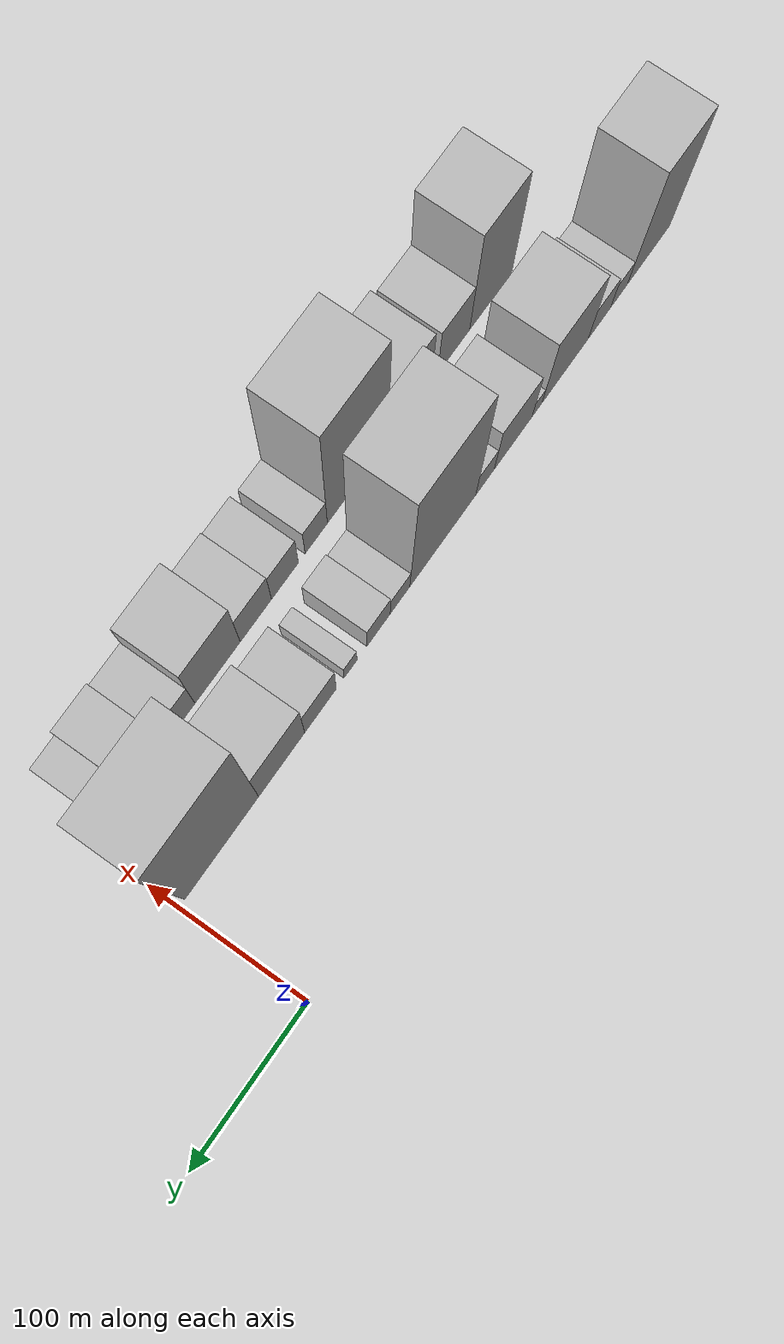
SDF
<sdf version="1.6">
 <world name="default">
  <model name="building_1">
   <static>1</static>
   <pose>100.0000 -429.0224 0 0.000000 0.000000 0.000000</pose>
   <link name="link">
    <pose>0 0 64.50 0 0 0</pose>
    <collision name="collision"><geometry><box><size>40.0000 41.9551 129.0000</size></box></geometry></collision>
    <visual name="visual">
     <cast_shadows>0</cast_shadows>
     <geometry><box><size>40.0000 41.9551 129.0000</size></box></geometry>
     <material>
      <script>
       <uri>model://HANNAS_wall/materials/scripts</uri>
       <uri>model://HANNAS_wall/materials/textures</uri>
       <name>vrc/HANNAS_wall</name>
      </script>
     </material>
    </visual>
   </link>
  </model>
  <model name="building_2">
   <static>1</static>
   <pose>100.0000 -399.9139 0 0.000000 0.000000 0.000000</pose>
   <link name="link">
    <pose>0 0 15.00 0 0 0</pose>
    <collision name="collision"><geometry><box><size>40.0000 16.2620 30.0000</size></box></geometry></collision>
    <visual name="visual">
     <cast_shadows>0</cast_shadows>
     <geometry><box><size>40.0000 16.2620 30.0000</size></box></geometry>
     <material>
      <script>
       <uri>model://HANNAS_wall/materials/scripts</uri>
       <uri>model://HANNAS_wall/materials/textures</uri>
       <name>vrc/HANNAS_wall</name>
      </script>
     </material>
    </visual>
   </link>
  </model>
  <model name="building_3">
   <static>1</static>
   <pose>100.0000 -380.9201 0 0.000000 0.000000 0.000000</pose>
   <link name="link">
    <pose>0 0 19.50 0 0 0</pose>
    <collision name="collision"><geometry><box><size>40.0000 21.7257 39.0000</size></box></geometry></collision>
    <visual name="visual">
     <cast_shadows>0</cast_shadows>
     <geometry><box><size>40.0000 21.7257 39.0000</size></box></geometry>
     <material>
      <script>
       <uri>model://HANNAS_wall/materials/scripts</uri>
       <uri>model://HANNAS_wall/materials/textures</uri>
       <name>vrc/HANNAS_wall</name>
      </script>
     </material>
    </visual>
   </link>
  </model>
  <model name="building_4">
   <static>1</static>
   <pose>100.0000 -347.9478 0 0.000000 0.000000 0.000000</pose>
   <link name="link">
    <pose>0 0 42.00 0 0 0</pose>
    <collision name="collision"><geometry><box><size>40.0000 44.2188 84.0000</size></box></geometry></collision>
    <visual name="visual">
     <cast_shadows>0</cast_shadows>
     <geometry><box><size>40.0000 44.2188 84.0000</size></box></geometry>
     <material>
      <script>
       <uri>model://HANNAS_wall/materials/scripts</uri>
       <uri>model://HANNAS_wall/materials/textures</uri>
       <name>vrc/HANNAS_wall</name>
      </script>
     </material>
    </visual>
   </link>
  </model>
  <model name="building_5">
   <static>1</static>
   <pose>100.0000 -321.0881 0 0.000000 0.000000 0.000000</pose>
   <link name="link">
    <pose>0 0 10.50 0 0 0</pose>
    <collision name="collision"><geometry><box><size>40.0000 9.5005 21.0000</size></box></geometry></collision>
    <visual name="visual">
     <cast_shadows>0</cast_shadows>
     <geometry><box><size>40.0000 9.5005 21.0000</size></box></geometry>
     <material>
      <script>
       <uri>model://HANNAS_wall/materials/scripts</uri>
       <uri>model://HANNAS_wall/materials/textures</uri>
       <name>vrc/HANNAS_wall</name>
      </script>
     </material>
    </visual>
   </link>
  </model>
  <model name="building_6">
   <static>1</static>
   <pose>100.0000 -298.5187 0 0.000000 0.000000 0.000000</pose>
   <link name="link">
    <pose>0 0 30.00 0 0 0</pose>
    <collision name="collision"><geometry><box><size>40.0000 35.6383 60.0000</size></box></geometry></collision>
    <visual name="visual">
     <cast_shadows>0</cast_shadows>
     <geometry><box><size>40.0000 35.6383 60.0000</size></box></geometry>
     <material>
      <script>
       <uri>model://HANNAS_wall/materials/scripts</uri>
       <uri>model://HANNAS_wall/materials/textures</uri>
       <name>vrc/HANNAS_wall</name>
      </script>
     </material>
    </visual>
   </link>
  </model>
  <model name="building_7">
   <static>1</static>
   <pose>100.0000 -272.0576 0 0.000000 0.000000 0.000000</pose>
   <link name="link">
    <pose>0 0 16.50 0 0 0</pose>
    <collision name="collision"><geometry><box><size>40.0000 17.2840 33.0000</size></box></geometry></collision>
    <visual name="visual">
     <cast_shadows>0</cast_shadows>
     <geometry><box><size>40.0000 17.2840 33.0000</size></box></geometry>
     <material>
      <script>
       <uri>model://HANNAS_wall/materials/scripts</uri>
       <uri>model://HANNAS_wall/materials/textures</uri>
       <name>vrc/HANNAS_wall</name>
      </script>
     </material>
    </visual>
   </link>
  </model>
  <model name="building_8">
   <static>1</static>
   <pose>100.0000 -233.0441 0 0.000000 0.000000 0.000000</pose>
   <link name="link">
    <pose>0 0 78.00 0 0 0</pose>
    <collision name="collision"><geometry><box><size>40.0000 60.7430 156.0000</size></box></geometry></collision>
    <visual name="visual">
     <cast_shadows>0</cast_shadows>
     <geometry><box><size>40.0000 60.7430 156.0000</size></box></geometry>
     <material>
      <script>
       <uri>model://HANNAS_wall/materials/scripts</uri>
       <uri>model://HANNAS_wall/materials/textures</uri>
       <name>vrc/HANNAS_wall</name>
      </script>
     </material>
    </visual>
   </link>
  </model>
  <model name="building_9">
   <static>1</static>
   <pose>100.0000 -193.7756 0 0.000000 0.000000 0.000000</pose>
   <link name="link">
    <pose>0 0 15.00 0 0 0</pose>
    <collision name="collision"><geometry><box><size>40.0000 17.7942 30.0000</size></box></geometry></collision>
    <visual name="visual">
     <cast_shadows>0</cast_shadows>
     <geometry><box><size>40.0000 17.7942 30.0000</size></box></geometry>
     <material>
      <script>
       <uri>model://HANNAS_wall/materials/scripts</uri>
       <uri>model://HANNAS_wall/materials/textures</uri>
       <name>vrc/HANNAS_wall</name>
      </script>
     </material>
    </visual>
   </link>
  </model>
  <model name="building_10">
   <static>1</static>
   <pose>100.0000 -174.4741 0 0.000000 0.000000 0.000000</pose>
   <link name="link">
    <pose>0 0 18.00 0 0 0</pose>
    <collision name="collision"><geometry><box><size>40.0000 20.8089 36.0000</size></box></geometry></collision>
    <visual name="visual">
     <cast_shadows>0</cast_shadows>
     <geometry><box><size>40.0000 20.8089 36.0000</size></box></geometry>
     <material>
      <script>
       <uri>model://HANNAS_wall/materials/scripts</uri>
       <uri>model://HANNAS_wall/materials/textures</uri>
       <name>vrc/HANNAS_wall</name>
      </script>
     </material>
    </visual>
   </link>
  </model>
  <model name="building_11">
   <static>1</static>
   <pose>100.0000 -149.3201 0 0.000000 0.000000 0.000000</pose>
   <link name="link">
    <pose>0 0 12.00 0 0 0</pose>
    <collision name="collision"><geometry><box><size>40.0000 11.4991 24.0000</size></box></geometry></collision>
    <visual name="visual">
     <cast_shadows>0</cast_shadows>
     <geometry><box><size>40.0000 11.4991 24.0000</size></box></geometry>
     <material>
      <script>
       <uri>model://HANNAS_wall/materials/scripts</uri>
       <uri>model://HANNAS_wall/materials/textures</uri>
       <name>vrc/HANNAS_wall</name>
      </script>
     </material>
    </visual>
   </link>
  </model>
  <model name="building_12">
   <static>1</static>
   <pose>100.0000 -122.6323 0 0.000000 0.000000 0.000000</pose>
   <link name="link">
    <pose>0 0 24.00 0 0 0</pose>
    <collision name="collision"><geometry><box><size>40.0000 27.8765 48.0000</size></box></geometry></collision>
    <visual name="visual">
     <cast_shadows>0</cast_shadows>
     <geometry><box><size>40.0000 27.8765 48.0000</size></box></geometry>
     <material>
      <script>
       <uri>model://HANNAS_wall/materials/scripts</uri>
       <uri>model://HANNAS_wall/materials/textures</uri>
       <name>vrc/HANNAS_wall</name>
      </script>
     </material>
    </visual>
   </link>
  </model>
  <model name="building_13">
   <static>1</static>
   <pose>100.0000 -88.6389 0 0.000000 0.000000 0.000000</pose>
   <link name="link">
    <pose>0 0 34.50 0 0 0</pose>
    <collision name="collision"><geometry><box><size>40.0000 40.1102 69.0000</size></box></geometry></collision>
    <visual name="visual">
     <cast_shadows>0</cast_shadows>
     <geometry><box><size>40.0000 40.1102 69.0000</size></box></geometry>
     <material>
      <script>
       <uri>model://HANNAS_wall/materials/scripts</uri>
       <uri>model://HANNAS_wall/materials/textures</uri>
       <name>vrc/HANNAS_wall</name>
      </script>
     </material>
    </visual>
   </link>
  </model>
  <model name="building_14">
   <static>1</static>
   <pose>100.0000 -36.8613 0 0.000000 0.000000 0.000000</pose>
   <link name="link">
    <pose>0 0 88.50 0 0 0</pose>
    <collision name="collision"><geometry><box><size>40.0000 63.4450 177.0000</size></box></geometry></collision>
    <visual name="visual">
     <cast_shadows>0</cast_shadows>
     <geometry><box><size>40.0000 63.4450 177.0000</size></box></geometry>
     <material>
      <script>
       <uri>model://HANNAS_wall/materials/scripts</uri>
       <uri>model://HANNAS_wall/materials/textures</uri>
       <name>vrc/HANNAS_wall</name>
      </script>
     </material>
    </visual>
   </link>
  </model>
  <model name="building_27">
   <static>1</static>
   <pose>155.0000 -357.7235 0 0.000000 0.000000 0.000000</pose>
   <link name="link">
    <pose>0 0 58.50 0 0 0</pose>
    <collision name="collision"><geometry><box><size>40.0000 40.1843 117.0000</size></box></geometry></collision>
    <visual name="visual">
     <cast_shadows>0</cast_shadows>
     <geometry><box><size>40.0000 40.1843 117.0000</size></box></geometry>
     <material>
      <script>
       <uri>model://HANNAS_wall/materials/scripts</uri>
       <uri>model://HANNAS_wall/materials/textures</uri>
       <name>vrc/HANNAS_wall</name>
      </script>
     </material>
    </visual>
   </link>
  </model>
  <model name="building_28">
   <static>1</static>
   <pose>155.0000 -322.5535 0 0.000000 0.000000 0.000000</pose>
   <link name="link">
    <pose>0 0 28.50 0 0 0</pose>
    <collision name="collision"><geometry><box><size>40.0000 30.1557 57.0000</size></box></geometry></collision>
    <visual name="visual">
     <cast_shadows>0</cast_shadows>
     <geometry><box><size>40.0000 30.1557 57.0000</size></box></geometry>
     <material>
      <script>
       <uri>model://HANNAS_wall/materials/scripts</uri>
       <uri>model://HANNAS_wall/materials/textures</uri>
       <name>vrc/HANNAS_wall</name>
      </script>
     </material>
    </visual>
   </link>
  </model>
  <model name="building_29">
   <static>1</static>
   <pose>155.0000 -281.3370 0 0.000000 0.000000 0.000000</pose>
   <link name="link">
    <pose>0 0 34.50 0 0 0</pose>
    <collision name="collision"><geometry><box><size>40.0000 40.2775 69.0000</size></box></geometry></collision>
    <visual name="visual">
     <cast_shadows>0</cast_shadows>
     <geometry><box><size>40.0000 40.2775 69.0000</size></box></geometry>
     <material>
      <script>
       <uri>model://HANNAS_wall/materials/scripts</uri>
       <uri>model://HANNAS_wall/materials/textures</uri>
       <name>vrc/HANNAS_wall</name>
      </script>
     </material>
    </visual>
   </link>
  </model>
  <model name="building_30">
   <static>1</static>
   <pose>155.0000 -233.5182 0 0.000000 0.000000 0.000000</pose>
   <link name="link">
    <pose>0 0 72.00 0 0 0</pose>
    <collision name="collision"><geometry><box><size>40.0000 55.3600 144.0000</size></box></geometry></collision>
    <visual name="visual">
     <cast_shadows>0</cast_shadows>
     <geometry><box><size>40.0000 55.3600 144.0000</size></box></geometry>
     <material>
      <script>
       <uri>model://HANNAS_wall/materials/scripts</uri>
       <uri>model://HANNAS_wall/materials/textures</uri>
       <name>vrc/HANNAS_wall</name>
      </script>
     </material>
    </visual>
   </link>
  </model>
  <model name="building_31">
   <static>1</static>
   <pose>155.0000 -195.7968 0 0.000000 0.000000 0.000000</pose>
   <link name="link">
    <pose>0 0 19.50 0 0 0</pose>
    <collision name="collision"><geometry><box><size>40.0000 20.0828 39.0000</size></box></geometry></collision>
    <visual name="visual">
     <cast_shadows>0</cast_shadows>
     <geometry><box><size>40.0000 20.0828 39.0000</size></box></geometry>
     <material>
      <script>
       <uri>model://HANNAS_wall/materials/scripts</uri>
       <uri>model://HANNAS_wall/materials/textures</uri>
       <name>vrc/HANNAS_wall</name>
      </script>
     </material>
    </visual>
   </link>
  </model>
  <model name="building_32">
   <static>1</static>
   <pose>155.0000 -167.7572 0 0.000000 0.000000 0.000000</pose>
   <link name="link">
    <pose>0 0 22.50 0 0 0</pose>
    <collision name="collision"><geometry><box><size>40.0000 23.9965 45.0000</size></box></geometry></collision>
    <visual name="visual">
     <cast_shadows>0</cast_shadows>
     <geometry><box><size>40.0000 23.9965 45.0000</size></box></geometry>
     <material>
      <script>
       <uri>model://HANNAS_wall/materials/scripts</uri>
       <uri>model://HANNAS_wall/materials/textures</uri>
       <name>vrc/HANNAS_wall</name>
      </script>
     </material>
    </visual>
   </link>
  </model>
  <model name="building_33">
   <static>1</static>
   <pose>155.0000 -141.8933 0 0.000000 0.000000 0.000000</pose>
   <link name="link">
    <pose>0 0 24.00 0 0 0</pose>
    <collision name="collision"><geometry><box><size>40.0000 27.7312 48.0000</size></box></geometry></collision>
    <visual name="visual">
     <cast_shadows>0</cast_shadows>
     <geometry><box><size>40.0000 27.7312 48.0000</size></box></geometry>
     <material>
      <script>
       <uri>model://HANNAS_wall/materials/scripts</uri>
       <uri>model://HANNAS_wall/materials/textures</uri>
       <name>vrc/HANNAS_wall</name>
      </script>
     </material>
    </visual>
   </link>
  </model>
  <model name="building_34">
   <static>1</static>
   <pose>155.0000 -108.2997 0 0.000000 0.000000 0.000000</pose>
   <link name="link">
    <pose>0 0 39.00 0 0 0</pose>
    <collision name="collision"><geometry><box><size>40.0000 39.4560 78.0000</size></box></geometry></collision>
    <visual name="visual">
     <cast_shadows>0</cast_shadows>
     <geometry><box><size>40.0000 39.4560 78.0000</size></box></geometry>
     <material>
      <script>
       <uri>model://HANNAS_wall/materials/scripts</uri>
       <uri>model://HANNAS_wall/materials/textures</uri>
       <name>vrc/HANNAS_wall</name>
      </script>
     </material>
    </visual>
   </link>
  </model>
  <model name="building_35">
   <static>1</static>
   <pose>155.0000 -75.5645 0 0.000000 0.000000 0.000000</pose>
   <link name="link">
    <pose>0 0 22.50 0 0 0</pose>
    <collision name="collision"><geometry><box><size>40.0000 26.0145 45.0000</size></box></geometry></collision>
    <visual name="visual">
     <cast_shadows>0</cast_shadows>
     <geometry><box><size>40.0000 26.0145 45.0000</size></box></geometry>
     <material>
      <script>
       <uri>model://HANNAS_wall/materials/scripts</uri>
       <uri>model://HANNAS_wall/materials/textures</uri>
       <name>vrc/HANNAS_wall</name>
      </script>
     </material>
    </visual>
   </link>
  </model>
  <model name="building_36">
   <static>1</static>
   <pose>155.0000 -48.0627 0 0.000000 0.000000 0.000000</pose>
   <link name="link">
    <pose>0 0 25.50 0 0 0</pose>
    <collision name="collision"><geometry><box><size>40.0000 28.9891 51.0000</size></box></geometry></collision>
    <visual name="visual">
     <cast_shadows>0</cast_shadows>
     <geometry><box><size>40.0000 28.9891 51.0000</size></box></geometry>
     <material>
      <script>
       <uri>model://HANNAS_wall/materials/scripts</uri>
       <uri>model://HANNAS_wall/materials/textures</uri>
       <name>vrc/HANNAS_wall</name>
      </script>
     </material>
    </visual>
   </link>
  </model>
  <model name="building_37">
   <static>1</static>
   <pose>155.0000 -23.3141 0 0.000000 0.000000 0.000000</pose>
   <link name="link">
    <pose>0 0 19.50 0 0 0</pose>
    <collision name="collision"><geometry><box><size>40.0000 20.5080 39.0000</size></box></geometry></collision>
    <visual name="visual">
     <cast_shadows>0</cast_shadows>
     <geometry><box><size>40.0000 20.5080 39.0000</size></box></geometry>
     <material>
      <script>
       <uri>model://HANNAS_wall/materials/scripts</uri>
       <uri>model://HANNAS_wall/materials/textures</uri>
       <name>vrc/HANNAS_wall</name>
      </script>
     </material>
    </visual>
   </link>
  </model>
 </world>
</sdf>
